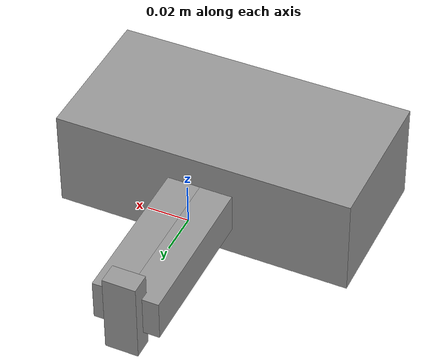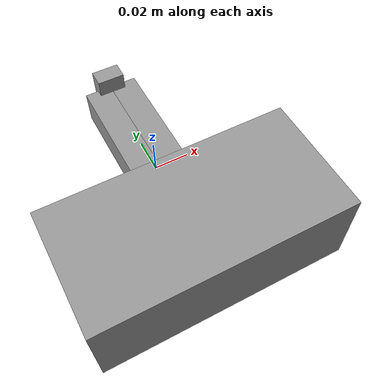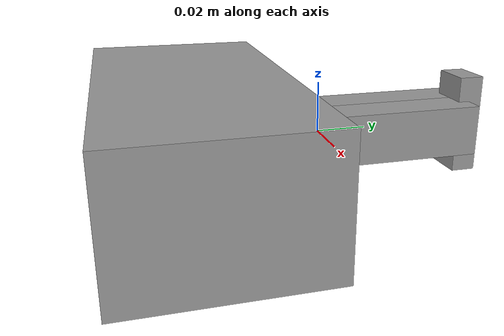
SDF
<?xml version='1.0'?>
<sdf version='1.6'>
  <model name='Schunk_Gripper'>
    <link name='body'>
      <pose frame=''>0 -0.049133 0 0 -0 0</pose>
      <inertial>
        <mass>0.988882</mass>
        <inertia>
          <ixx>0.162992</ixx>
          <ixy>0</ixy>
          <ixz>0</ixz>
          <iyy>0.162992</iyy>
          <iyz>0</iyz>
          <izz>0.164814</izz>
        </inertia>
        <pose frame=''>0 0 0 0 -0 0</pose>
      </inertial>
      <self_collide>0</self_collide>
      <kinematic>0</kinematic>
      <visual name='visual'>
        <pose frame=''>0 0 0 0 -0 0</pose>
        <geometry>
          <box>
            <size>0.146 0.0725 0.049521</size>
          </box>
        </geometry>
        <material>
          <lighting>1</lighting>
          <script>
            <uri>file://media/materials/scripts/gazebo.material</uri>
            <name>Gazebo/Grey</name>
          </script>
          <ambient>0.3 0.3 0.3 1</ambient>
          <diffuse>0.7 0.7 0.7 1</diffuse>
          <specular>0.01 0.01 0.01 1</specular>
          <emissive>0 0 0 1</emissive>
          <shader type='vertex'>
            <normal_map>__default__</normal_map>
          </shader>
        </material>
        <cast_shadows>1</cast_shadows>
        <transparency>0</transparency>
      </visual>
      <collision name='collision'>
        <laser_retro>0</laser_retro>
        <max_contacts>10</max_contacts>
        <pose frame=''>0 0 0 0 -0 0</pose>
        <geometry>
          <box>
            <size>0.146 0.0725 0.049521</size>
          </box>
        </geometry>
        <surface>
          <friction>
            <ode>
              <mu>1</mu>
              <mu2>1</mu2>
              <fdir1>0 0 0</fdir1>
              <slip1>0</slip1>
              <slip2>0</slip2>
            </ode>
            <torsional>
              <coefficient>1</coefficient>
              <patch_radius>0</patch_radius>
              <surface_radius>0</surface_radius>
              <use_patch_radius>1</use_patch_radius>
              <ode>
                <slip>0</slip>
              </ode>
            </torsional>
          </friction>
          <bounce>
            <restitution_coefficient>0</restitution_coefficient>
            <threshold>1e+06</threshold>
          </bounce>
          <contact>
            <collide_without_contact>0</collide_without_contact>
            <collide_without_contact_bitmask>1</collide_without_contact_bitmask>
            <collide_bitmask>1</collide_bitmask>
            <ode>
              <soft_cfm>0</soft_cfm>
              <soft_erp>0.2</soft_erp>
              <kp>1e+13</kp>
              <kd>1</kd>
              <max_vel>0.01</max_vel>
              <min_depth>0</min_depth>
            </ode>
            <bullet>
              <split_impulse>1</split_impulse>
              <split_impulse_penetration_threshold>-0.01</split_impulse_penetration_threshold>
              <soft_cfm>0</soft_cfm>
              <soft_erp>0.2</soft_erp>
              <kp>1e+13</kp>
              <kd>1</kd>
            </bullet>
          </contact>
        </surface>
      </collision>
    </link>
    <link name='left_finger'>
      <pose frame=''>-0.008 0.025 0 0 -0 0</pose>
      <inertial>
        <mass>0.01</mass>
        <inertia>
          <ixx>0.01</ixx>
          <ixy>0</ixy>
          <ixz>0</ixz>
          <iyy>0.01</iyy>
          <iyz>0</iyz>
          <izz>0.01</izz>
        </inertia>
        <pose frame=''>0 0 0 0 -0 0</pose>
      </inertial>
      <self_collide>0</self_collide>
      <kinematic>0</kinematic>
      <visual name='visual'>
        <pose frame=''>0 0 0 0 -0 0</pose>
        <geometry>
          <box>
            <size>0.016 0.075 0.02</size>
          </box>
        </geometry>
        <material>
          <lighting>1</lighting>
          <script>
            <uri>file://media/materials/scripts/gazebo.material</uri>
            <name>Gazebo/Grey</name>
          </script>
          <ambient>0.3 0.3 0.3 1</ambient>
          <diffuse>0.7 0.7 0.7 1</diffuse>
          <specular>0.01 0.01 0.01 1</specular>
          <emissive>0 0 0 1</emissive>
          <shader type='vertex'>
            <normal_map>__default__</normal_map>
          </shader>
        </material>
        <cast_shadows>1</cast_shadows>
        <transparency>0</transparency>
      </visual>
      <collision name='collision'>
        <laser_retro>0</laser_retro>
        <max_contacts>10</max_contacts>
        <pose frame=''>0 0 0 0 -0 0</pose>
        <geometry>
          <box>
            <size>0.016 0.075 0.02</size>
          </box>
        </geometry>
        <surface>
          <friction>
            <ode>
              <mu>1</mu>
              <mu2>1</mu2>
              <fdir1>0 0 0</fdir1>
              <slip1>0</slip1>
              <slip2>0</slip2>
            </ode>
            <torsional>
              <coefficient>1</coefficient>
              <patch_radius>0</patch_radius>
              <surface_radius>0</surface_radius>
              <use_patch_radius>1</use_patch_radius>
              <ode>
                <slip>0</slip>
              </ode>
            </torsional>
          </friction>
          <bounce>
            <restitution_coefficient>0</restitution_coefficient>
            <threshold>1e+06</threshold>
          </bounce>
          <contact>
            <collide_without_contact>0</collide_without_contact>
            <collide_without_contact_bitmask>1</collide_without_contact_bitmask>
            <collide_bitmask>1</collide_bitmask>
            <ode>
              <soft_cfm>0</soft_cfm>
              <soft_erp>0.2</soft_erp>
              <kp>1e+13</kp>
              <kd>1</kd>
              <max_vel>0.01</max_vel>
              <min_depth>0</min_depth>
            </ode>
            <bullet>
              <split_impulse>1</split_impulse>
              <split_impulse_penetration_threshold>-0.01</split_impulse_penetration_threshold>
              <soft_cfm>0</soft_cfm>
              <soft_erp>0.2</soft_erp>
              <kp>1e+13</kp>
              <kd>1</kd>
            </bullet>
          </contact>
        </surface>
      </collision>
    </link>

    <joint name='left_finger_lip_joint' type='fixed'>
      <parent>left_finger</parent>
      <child>left_finger_lip</child>
      <pose frame=''>0 -0.0 0 0 -0 0</pose>
      <axis>
        <limit><effort>0</effort></limit>
        <xyz>0 0 1</xyz>
        <use_parent_model_frame>0</use_parent_model_frame>
      </axis>
    </joint>

    <link name='left_finger_lip'>
      <pose frame=''>-0.00 0.063 0 0 -0 0</pose>
      <inertial>
        <mass>0.05</mass>
        <inertia>
          <ixx>0.16</ixx>
          <ixy>0</ixy>
          <ixz>0</ixz>
          <iyy>0.16</iyy>
          <iyz>0</iyz>
          <izz>0.16</izz>
        </inertia>
        <pose frame=''>0 0 0 0 -0 0</pose>
      </inertial>
      <self_collide>0</self_collide>
      <kinematic>0</kinematic>
      <visual name='visual'>
        <pose frame=''>0 0 0 0 -0 0</pose>
        <geometry>
          <box>
            <size>0.016 0.01 0.04</size>
          </box>
        </geometry>
        <material>
          <lighting>1</lighting>
          <script>
            <uri>file://media/materials/scripts/gazebo.material</uri>
            <name>Gazebo/Grey</name>
          </script>
          <ambient>0.3 0.3 0.3 1</ambient>
          <diffuse>0.7 0.7 0.7 1</diffuse>
          <specular>0.01 0.01 0.01 1</specular>
          <emissive>0 0 0 1</emissive>
          <shader type='vertex'>
            <normal_map>__default__</normal_map>
          </shader>
        </material>
        <cast_shadows>1</cast_shadows>
        <transparency>0</transparency>
      </visual>
      <collision name='collision'>
        <laser_retro>0</laser_retro>
        <max_contacts>10</max_contacts>
        <pose frame=''>0 0 0 0 -0 0</pose>
        <geometry>
          <box>
            <size>0.016 0.01 0.04</size>
          </box>
        </geometry>
        <surface>
          <friction>
            <ode>
              <mu>1</mu>
              <mu2>1</mu2>
              <fdir1>0 0 0</fdir1>
              <slip1>0</slip1>
              <slip2>0</slip2>
            </ode>
            <torsional>
              <coefficient>1</coefficient>
              <patch_radius>0</patch_radius>
              <surface_radius>0</surface_radius>
              <use_patch_radius>1</use_patch_radius>
              <ode>
                <slip>0</slip>
              </ode>
            </torsional>
          </friction>
          <bounce>
            <restitution_coefficient>0</restitution_coefficient>
            <threshold>1e+06</threshold>
          </bounce>
          <contact>
            <collide_without_contact>0</collide_without_contact>
            <collide_without_contact_bitmask>1</collide_without_contact_bitmask>
            <collide_bitmask>1</collide_bitmask>
            <ode>
              <soft_cfm>0</soft_cfm>
              <soft_erp>0.2</soft_erp>
              <kp>1e+13</kp>
              <kd>1</kd>
              <max_vel>0.01</max_vel>
              <min_depth>0</min_depth>
            </ode>
            <bullet>
              <split_impulse>1</split_impulse>
              <split_impulse_penetration_threshold>-0.01</split_impulse_penetration_threshold>
              <soft_cfm>0</soft_cfm>
              <soft_erp>0.2</soft_erp>
              <kp>1e+13</kp>
              <kd>1</kd>
            </bullet>
          </contact>
        </surface>
      </collision>
    </link>

    <link name='left_pusher'>
      <pose frame=''>0.028 0.037 0 0 0 -0.909</pose>
      <inertial>
        <mass>0</mass>
        <inertia>
          <ixx>0.0001</ixx>
          <ixy>0</ixy>
          <ixz>0</ixz>
          <iyy>0.0001</iyy>
          <iyz>0</iyz>
          <izz>0.0001</izz>
        </inertia>
        <pose frame=''>0 0 0 0 -0 0</pose>
      </inertial>
      <self_collide>0</self_collide>
      <kinematic>0</kinematic>
      <gravity>1</gravity>
    </link>
    <link name='nonphysical_rotor'>
      <pose frame=''>0 0 0 0 -0 0.785398</pose>
      <inertial>
        <mass>0</mass>
        <inertia>
          <ixx>0.0001</ixx>
          <ixy>0</ixy>
          <ixz>0</ixz>
          <iyy>0.0001</iyy>
          <iyz>0</iyz>
          <izz>0.0001</izz>
        </inertia>
        <pose frame=''>0 0 0 0 -0 0</pose>
      </inertial>
      <self_collide>0</self_collide>
      <kinematic>0</kinematic>
      <gravity>1</gravity>
    </link>
    <link name='right_finger'>
      <pose frame=''>0.008 0.025 0 0 -0 0</pose>
      <inertial>
        <mass>0.05</mass>
        <inertia>
          <ixx>0.16</ixx>
          <ixy>0</ixy>
          <ixz>0</ixz>
          <iyy>0.16</iyy>
          <iyz>0</iyz>
          <izz>0.16</izz>
        </inertia>
        <pose frame=''>0 0 0 0 -0 0</pose>
      </inertial>
      <self_collide>0</self_collide>
      <kinematic>0</kinematic>
      <visual name='visual'>
        <pose frame=''>0 0 0 0 -0 0</pose>
        <geometry>
          <box>
            <size>0.016 0.075 0.02</size>
          </box>
        </geometry>
        <material>
          <lighting>1</lighting>
          <script>
            <uri>file://media/materials/scripts/gazebo.material</uri>
            <name>Gazebo/Grey</name>
          </script>
          <ambient>0.3 0.3 0.3 1</ambient>
          <diffuse>0.7 0.7 0.7 1</diffuse>
          <specular>0.01 0.01 0.01 1</specular>
          <emissive>0 0 0 1</emissive>
          <shader type='vertex'>
            <normal_map>__default__</normal_map>
          </shader>
        </material>
        <cast_shadows>1</cast_shadows>
        <transparency>0</transparency>
      </visual>
      <collision name='collision'>
        <laser_retro>0</laser_retro>
        <max_contacts>10</max_contacts>
        <pose frame=''>0 0 0 0 -0 0</pose>
        <geometry>
          <box>
            <size>0.016 0.075 0.02</size>
          </box>
        </geometry>
        <surface>
          <friction>
            <ode>
              <mu>1</mu>
              <mu2>1</mu2>
              <fdir1>0 0 0</fdir1>
              <slip1>0</slip1>
              <slip2>0</slip2>
            </ode>
            <torsional>
              <coefficient>1</coefficient>
              <patch_radius>0</patch_radius>
              <surface_radius>0</surface_radius>
              <use_patch_radius>1</use_patch_radius>
              <ode>
                <slip>0</slip>
              </ode>
            </torsional>
          </friction>
          <bounce>
            <restitution_coefficient>0</restitution_coefficient>
            <threshold>1e+06</threshold>
          </bounce>
          <contact>
            <collide_without_contact>0</collide_without_contact>
            <collide_without_contact_bitmask>1</collide_without_contact_bitmask>
            <collide_bitmask>1</collide_bitmask>
            <ode>
              <soft_cfm>0</soft_cfm>
              <soft_erp>0.2</soft_erp>
              <kp>1e+13</kp>
              <kd>1</kd>
              <max_vel>0.01</max_vel>
              <min_depth>0</min_depth>
            </ode>
            <bullet>
              <split_impulse>1</split_impulse>
              <split_impulse_penetration_threshold>-0.01</split_impulse_penetration_threshold>
              <soft_cfm>0</soft_cfm>
              <soft_erp>0.2</soft_erp>
              <kp>1e+13</kp>
              <kd>1</kd>
            </bullet>
          </contact>
        </surface>
      </collision>
    </link>
    <link name='right_pusher'>
      <pose frame=''>-0.028 -0.037 0 0 0 -0.909</pose>
      <inertial>
        <mass>0</mass>
        <inertia>
          <ixx>0.0001</ixx>
          <ixy>0</ixy>
          <ixz>0</ixz>
          <iyy>0.0001</iyy>
          <iyz>0</iyz>
          <izz>0.0001</izz>
        </inertia>
        <pose frame=''>0 0 0 0 -0 0</pose>
      </inertial>
      <self_collide>0</self_collide>
      <kinematic>0</kinematic>
      <gravity>1</gravity>
      <visual name='visual'>
        <pose frame=''>0 0 0 0 -0 0</pose>
        <geometry>
          <box>
            <size>0.01 0.0571 0.01</size>
          </box>
        </geometry>
        <material>
          <lighting>1</lighting>
          <script>
            <uri>file://media/materials/scripts/gazebo.material</uri>
            <name>Gazebo/Grey</name>
          </script>
          <ambient>0.3 0.3 0.3 1</ambient>
          <diffuse>0.7 0.7 0.7 1</diffuse>
          <specular>0.01 0.01 0.01 1</specular>
          <emissive>0 0 0 1</emissive>
          <shader type='vertex'>
            <normal_map>__default__</normal_map>
          </shader>
        </material>
        <cast_shadows>1</cast_shadows>
        <transparency>0</transparency>
      </visual>
    </link>
    <joint name='left_finger_push' type='revolute'>
      <parent>left_finger</parent>
      <child>left_pusher</child>
      <pose frame=''>0 -0.057 0 0 -0 0</pose>
      <axis>
        <limit><effort>0</effort></limit>
        <xyz>0 0 1</xyz>
        <use_parent_model_frame>0</use_parent_model_frame>
        <dynamics>
          <spring_reference>0</spring_reference>
          <spring_stiffness>0</spring_stiffness>
          <damping>0</damping>
          <friction>0</friction>
        </dynamics>
      </axis>
      <physics>
        <ode>
          <limit>
            <cfm>0</cfm>
            <erp>0.2</erp>
          </limit>
          <suspension>
            <cfm>0</cfm>
            <erp>0.2</erp>
          </suspension>
        </ode>
      </physics>
    </joint>
    <joint name='left_finger_sliding_joint' type='prismatic'>
      <parent>body</parent>
      <child>left_finger</child>
      <pose frame=''>0 0 0 0 -0 0</pose>
      <axis>
        <xyz>1 0 0</xyz>
        <use_parent_model_frame>0</use_parent_model_frame>
        <!-- Drake attaches an actuator to all and only joints with a nonzero
             effort limit. -->
        <limit>
          <lower>-0.055</lower>
          <upper>0</upper>
          <effort>80</effort>
          <stiffness>15000</stiffness>
          <dissipation>50</dissipation>
        </limit>
        <dynamics>
          <spring_reference>0</spring_reference>
          <spring_stiffness>0</spring_stiffness>
          <damping>0</damping>
          <friction>0</friction>
        </dynamics>
      </axis>
      <physics>
        <ode>
          <limit>
            <cfm>0</cfm>
            <erp>0.2</erp>
          </limit>
          <suspension>
            <cfm>0</cfm>
            <erp>0.2</erp>
          </suspension>
        </ode>
      </physics>
    </joint>
    <joint name='left_rotor_push' type='revolute'>
      <parent>nonphysical_rotor</parent>
      <child>left_pusher</child>
      <pose frame=''>0 0.057 0 0 -0 0</pose>
      <axis>
        <limit><effort>0</effort></limit>
        <xyz>0 0 1</xyz>
        <use_parent_model_frame>0</use_parent_model_frame>
        <dynamics>
          <spring_reference>0</spring_reference>
          <spring_stiffness>0</spring_stiffness>
          <damping>0</damping>
          <friction>0</friction>
        </dynamics>
      </axis>
      <physics>
        <ode>
          <limit>
            <cfm>0</cfm>
            <erp>0.2</erp>
          </limit>
          <suspension>
            <cfm>0</cfm>
            <erp>0.2</erp>
          </suspension>
        </ode>
      </physics>
    </joint>
    <joint name='nonphysical_rotor_mount' type='revolute'>
      <parent>body</parent>
      <child>nonphysical_rotor</child>
      <pose frame=''>0 0 0 0 -0 0</pose>
      <axis>
        <limit><effort>0</effort></limit>
        <xyz>0 0 1</xyz>
        <use_parent_model_frame>0</use_parent_model_frame>
        <dynamics>
          <spring_reference>0</spring_reference>
          <spring_stiffness>0</spring_stiffness>
          <damping>0</damping>
          <friction>0</friction>
        </dynamics>
      </axis>
      <physics>
        <ode>
          <limit>
            <cfm>0</cfm>
            <erp>0.2</erp>
          </limit>
          <suspension>
            <cfm>0</cfm>
            <erp>0.2</erp>
          </suspension>
        </ode>
      </physics>
    </joint>
    <joint name='right_finger_push' type='revolute'>
      <parent>right_finger</parent>
      <child>right_pusher</child>
      <pose frame=''>0 0.057 0 0 -0 0</pose>
      <axis>
        <limit><effort>0</effort></limit>
        <xyz>0 0 1</xyz>
        <use_parent_model_frame>0</use_parent_model_frame>
        <dynamics>
          <spring_reference>0</spring_reference>
          <spring_stiffness>0</spring_stiffness>
          <damping>0</damping>
          <friction>0</friction>
        </dynamics>
      </axis>
      <physics>
        <ode>
          <limit>
            <cfm>0</cfm>
            <erp>0.2</erp>
          </limit>
          <suspension>
            <cfm>0</cfm>
            <erp>0.2</erp>
          </suspension>
        </ode>
      </physics>
    </joint>
    <joint name='right_finger_sliding_joint' type='prismatic'>
      <parent>body</parent>
      <child>right_finger</child>
      <pose frame=''>0 0 0 0 -0 0</pose>
      <axis>
        <xyz>1 0 0</xyz>
        <use_parent_model_frame>0</use_parent_model_frame>
        <limit>
          <effort>0</effort>
        </limit>
        <dynamics>
          <spring_reference>0</spring_reference>
          <spring_stiffness>0</spring_stiffness>
          <damping>0</damping>
          <friction>0</friction>
        </dynamics>
      </axis>
      <physics>
        <ode>
          <limit>
            <cfm>0</cfm>
            <erp>0.2</erp>
          </limit>
          <suspension>
            <cfm>0</cfm>
            <erp>0.2</erp>
          </suspension>
        </ode>
      </physics>
    </joint>
    <joint name='right_rotor_push' type='revolute'>
      <parent>nonphysical_rotor</parent>
      <child>right_pusher</child>
      <pose frame=''>0 -0.057 0 0 -0 0</pose>
      <axis>
        <limit><effort>0</effort></limit>
        <xyz>0 0 1</xyz>
        <use_parent_model_frame>0</use_parent_model_frame>
        <dynamics>
          <spring_reference>0</spring_reference>
          <spring_stiffness>0</spring_stiffness>
          <damping>0</damping>
          <friction>0</friction>
        </dynamics>
      </axis>
      <physics>
        <ode>
          <limit>
            <cfm>0</cfm>
            <erp>0.2</erp>
          </limit>
          <suspension>
            <cfm>0</cfm>
            <erp>0.2</erp>
          </suspension>
        </ode>
      </physics>
    </joint>
    <static>0</static>
    <allow_auto_disable>1</allow_auto_disable>
  </model>
</sdf>
